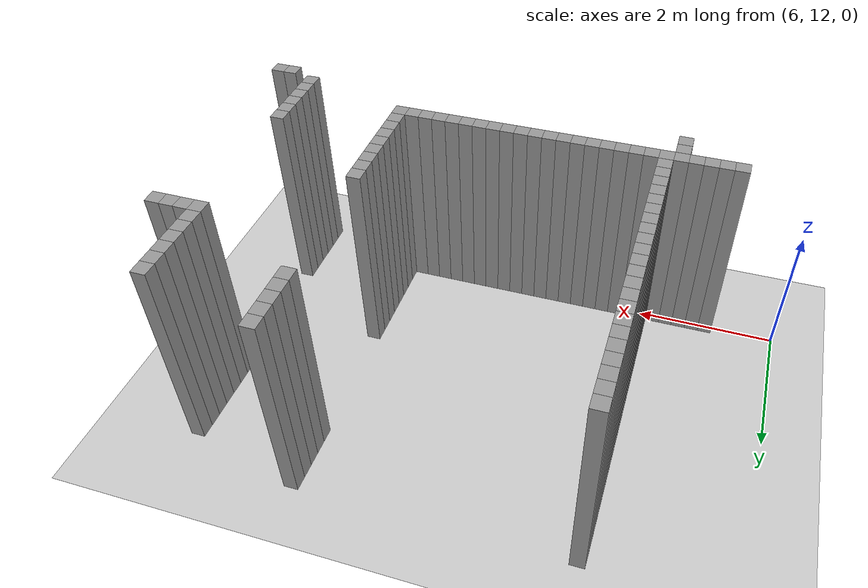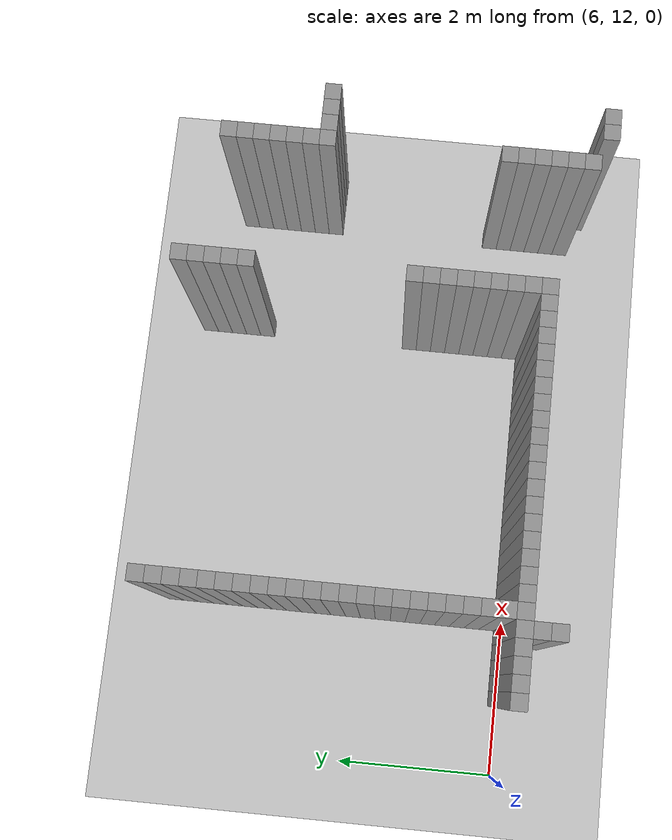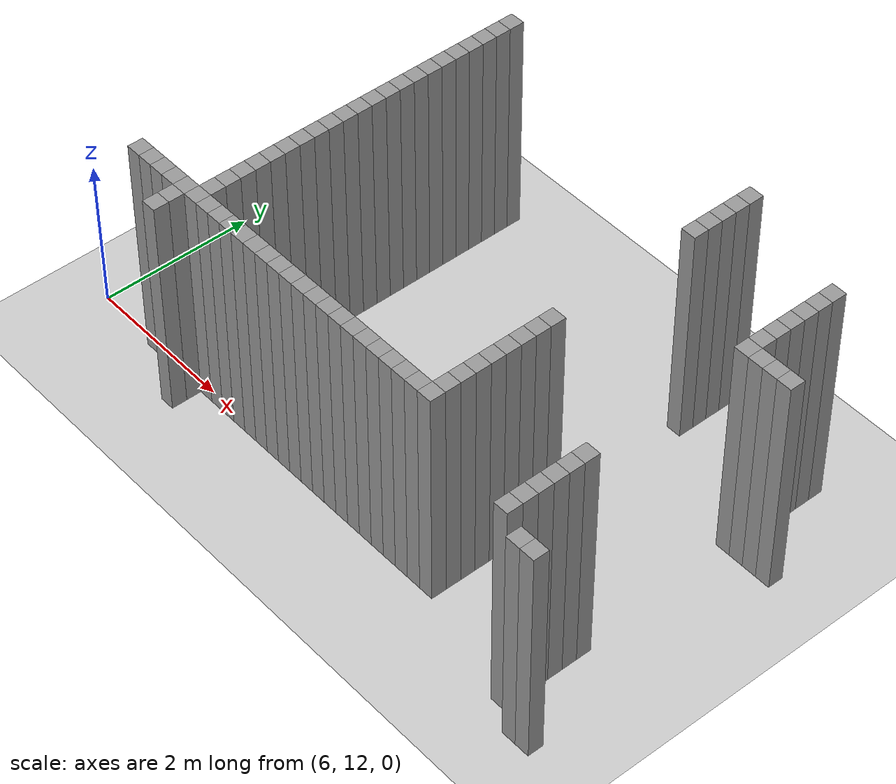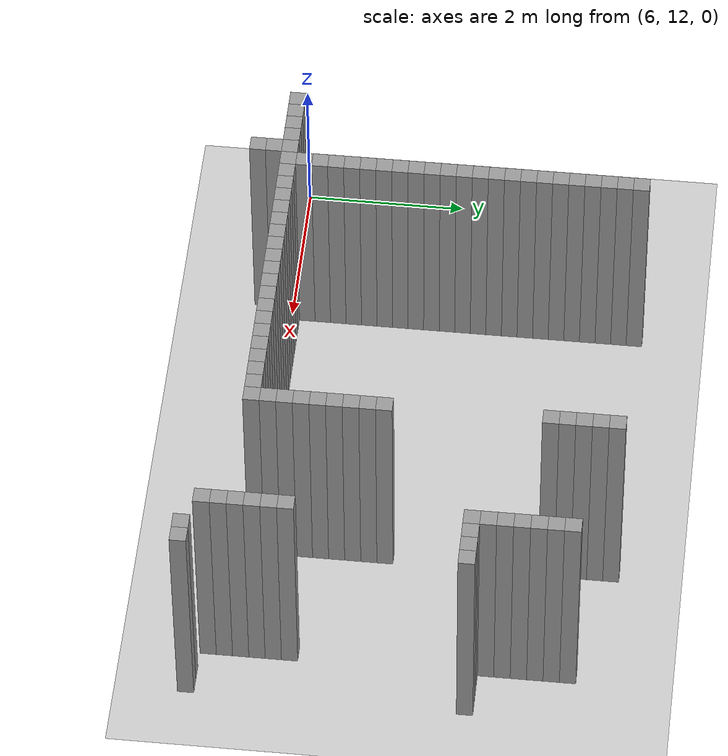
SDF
<sdf version="1.7">
 <world name="default">
  <model name="ground_plane">
   <static>1</static>
   <link name="link">
    <collision name="collision">
     <geometry><plane><normal>0 0 1</normal><size>100 100</size></plane></geometry>
     <surface>
      <contact><collide_bitmask>65535</collide_bitmask></contact>
      <friction><ode><mu>100</mu><mu2>50</mu2></ode></friction>
     </surface>
    </collision>
    <visual name="visual">
     <cast_shadows>0</cast_shadows>
     <geometry><plane><normal>0 0 1</normal><size>100 100</size></plane></geometry>
     <material>
      <script><uri>file://media/materials/scripts/gazebo.material</uri><name>Gazebo/Grey</name></script>
     </material>
    </visual>
   </link>
  </model>
  <model name="05222">
   <pose>-1 -1 0 0 -0 0</pose>
   <link name="Wall_562">
    <collision name="Wall_562_Collision">
     <geometry><box><size>0.2 0.2 3</size></box></geometry>
     <pose>0 0 1.5 0 -0 0</pose>
    </collision>
    <visual name="Wall_562_Visual">
     <pose>0 0 1.5 0 -0 0</pose>
     <geometry><box><size>0.2 0.2 3</size></box></geometry>
     <material>
      <script><uri>file://media/materials/scripts/gazebo.material</uri><name>Gazebo/Grey</name></script>
      <ambient>1 1 1 1</ambient>
     </material>
     <meta><layer>0</layer></meta>
    </visual>
    <pose>14.8 12.4 0 0 -0 0</pose>
   </link>
   <link name="Wall_563">
    <collision name="Wall_563_Collision">
     <geometry><box><size>0.2 0.2 3</size></box></geometry>
     <pose>0 0 1.5 0 -0 0</pose>
    </collision>
    <visual name="Wall_563_Visual">
     <pose>0 0 1.5 0 -0 0</pose>
     <geometry><box><size>0.2 0.2 3</size></box></geometry>
     <material>
      <script><uri>file://media/materials/scripts/gazebo.material</uri><name>Gazebo/Grey</name></script>
      <ambient>1 1 1 1</ambient>
     </material>
     <meta><layer>0</layer></meta>
    </visual>
    <pose>15.0 12.4 0 0 -0 0</pose>
   </link>
   <link name="Wall_582">
    <collision name="Wall_582_Collision">
     <geometry><box><size>0.2 0.2 3</size></box></geometry>
     <pose>0 0 1.5 0 -0 0</pose>
    </collision>
    <visual name="Wall_582_Visual">
     <pose>0 0 1.5 0 -0 0</pose>
     <geometry><box><size>0.2 0.2 3</size></box></geometry>
     <material>
      <script><uri>file://media/materials/scripts/gazebo.material</uri><name>Gazebo/Grey</name></script>
      <ambient>1 1 1 1</ambient>
     </material>
     <meta><layer>0</layer></meta>
    </visual>
    <pose>8.8 12.600000000000001 0 0 -0 0</pose>
   </link>
   <link name="Wall_583">
    <collision name="Wall_583_Collision">
     <geometry><box><size>0.2 0.2 3</size></box></geometry>
     <pose>0 0 1.5 0 -0 0</pose>
    </collision>
    <visual name="Wall_583_Visual">
     <pose>0 0 1.5 0 -0 0</pose>
     <geometry><box><size>0.2 0.2 3</size></box></geometry>
     <material>
      <script><uri>file://media/materials/scripts/gazebo.material</uri><name>Gazebo/Grey</name></script>
      <ambient>1 1 1 1</ambient>
     </material>
     <meta><layer>0</layer></meta>
    </visual>
    <pose>14.4 12.600000000000001 0 0 -0 0</pose>
   </link>
   <link name="Wall_588">
    <collision name="Wall_588_Collision">
     <geometry><box><size>0.2 0.2 3</size></box></geometry>
     <pose>0 0 1.5 0 -0 0</pose>
    </collision>
    <visual name="Wall_588_Visual">
     <pose>0 0 1.5 0 -0 0</pose>
     <geometry><box><size>0.2 0.2 3</size></box></geometry>
     <material>
      <script><uri>file://media/materials/scripts/gazebo.material</uri><name>Gazebo/Grey</name></script>
      <ambient>1 1 1 1</ambient>
     </material>
     <meta><layer>0</layer></meta>
    </visual>
    <pose>8.8 12.8 0 0 -0 0</pose>
   </link>
   <link name="Wall_589">
    <collision name="Wall_589_Collision">
     <geometry><box><size>0.2 0.2 3</size></box></geometry>
     <pose>0 0 1.5 0 -0 0</pose>
    </collision>
    <visual name="Wall_589_Visual">
     <pose>0 0 1.5 0 -0 0</pose>
     <geometry><box><size>0.2 0.2 3</size></box></geometry>
     <material>
      <script><uri>file://media/materials/scripts/gazebo.material</uri><name>Gazebo/Grey</name></script>
      <ambient>1 1 1 1</ambient>
     </material>
     <meta><layer>0</layer></meta>
    </visual>
    <pose>14.4 12.8 0 0 -0 0</pose>
   </link>
   <link name="Wall_607">
    <collision name="Wall_607_Collision">
     <geometry><box><size>0.2 0.2 3</size></box></geometry>
     <pose>0 0 1.5 0 -0 0</pose>
    </collision>
    <visual name="Wall_607_Visual">
     <pose>0 0 1.5 0 -0 0</pose>
     <geometry><box><size>0.2 0.2 3</size></box></geometry>
     <material>
      <script><uri>file://media/materials/scripts/gazebo.material</uri><name>Gazebo/Grey</name></script>
      <ambient>1 1 1 1</ambient>
     </material>
     <meta><layer>0</layer></meta>
    </visual>
    <pose>8.0 13.0 0 0 -0 0</pose>
   </link>
   <link name="Wall_608">
    <collision name="Wall_608_Collision">
     <geometry><box><size>0.2 0.2 3</size></box></geometry>
     <pose>0 0 1.5 0 -0 0</pose>
    </collision>
    <visual name="Wall_608_Visual">
     <pose>0 0 1.5 0 -0 0</pose>
     <geometry><box><size>0.2 0.2 3</size></box></geometry>
     <material>
      <script><uri>file://media/materials/scripts/gazebo.material</uri><name>Gazebo/Grey</name></script>
      <ambient>1 1 1 1</ambient>
     </material>
     <meta><layer>0</layer></meta>
    </visual>
    <pose>8.200000000000001 13.0 0 0 -0 0</pose>
   </link>
   <link name="Wall_609">
    <collision name="Wall_609_Collision">
     <geometry><box><size>0.2 0.2 3</size></box></geometry>
     <pose>0 0 1.5 0 -0 0</pose>
    </collision>
    <visual name="Wall_609_Visual">
     <pose>0 0 1.5 0 -0 0</pose>
     <geometry><box><size>0.2 0.2 3</size></box></geometry>
     <material>
      <script><uri>file://media/materials/scripts/gazebo.material</uri><name>Gazebo/Grey</name></script>
      <ambient>1 1 1 1</ambient>
     </material>
     <meta><layer>0</layer></meta>
    </visual>
    <pose>8.4 13.0 0 0 -0 0</pose>
   </link>
   <link name="Wall_610">
    <collision name="Wall_610_Collision">
     <geometry><box><size>0.2 0.2 3</size></box></geometry>
     <pose>0 0 1.5 0 -0 0</pose>
    </collision>
    <visual name="Wall_610_Visual">
     <pose>0 0 1.5 0 -0 0</pose>
     <geometry><box><size>0.2 0.2 3</size></box></geometry>
     <material>
      <script><uri>file://media/materials/scripts/gazebo.material</uri><name>Gazebo/Grey</name></script>
      <ambient>1 1 1 1</ambient>
     </material>
     <meta><layer>0</layer></meta>
    </visual>
    <pose>8.6 13.0 0 0 -0 0</pose>
   </link>
   <link name="Wall_611">
    <collision name="Wall_611_Collision">
     <geometry><box><size>0.2 0.2 3</size></box></geometry>
     <pose>0 0 1.5 0 -0 0</pose>
    </collision>
    <visual name="Wall_611_Visual">
     <pose>0 0 1.5 0 -0 0</pose>
     <geometry><box><size>0.2 0.2 3</size></box></geometry>
     <material>
      <script><uri>file://media/materials/scripts/gazebo.material</uri><name>Gazebo/Grey</name></script>
      <ambient>1 1 1 1</ambient>
     </material>
     <meta><layer>0</layer></meta>
    </visual>
    <pose>8.8 13.0 0 0 -0 0</pose>
   </link>
   <link name="Wall_612">
    <collision name="Wall_612_Collision">
     <geometry><box><size>0.2 0.2 3</size></box></geometry>
     <pose>0 0 1.5 0 -0 0</pose>
    </collision>
    <visual name="Wall_612_Visual">
     <pose>0 0 1.5 0 -0 0</pose>
     <geometry><box><size>0.2 0.2 3</size></box></geometry>
     <material>
      <script><uri>file://media/materials/scripts/gazebo.material</uri><name>Gazebo/Grey</name></script>
      <ambient>1 1 1 1</ambient>
     </material>
     <meta><layer>0</layer></meta>
    </visual>
    <pose>9.0 13.0 0 0 -0 0</pose>
   </link>
   <link name="Wall_613">
    <collision name="Wall_613_Collision">
     <geometry><box><size>0.2 0.2 3</size></box></geometry>
     <pose>0 0 1.5 0 -0 0</pose>
    </collision>
    <visual name="Wall_613_Visual">
     <pose>0 0 1.5 0 -0 0</pose>
     <geometry><box><size>0.2 0.2 3</size></box></geometry>
     <material>
      <script><uri>file://media/materials/scripts/gazebo.material</uri><name>Gazebo/Grey</name></script>
      <ambient>1 1 1 1</ambient>
     </material>
     <meta><layer>0</layer></meta>
    </visual>
    <pose>9.200000000000001 13.0 0 0 -0 0</pose>
   </link>
   <link name="Wall_614">
    <collision name="Wall_614_Collision">
     <geometry><box><size>0.2 0.2 3</size></box></geometry>
     <pose>0 0 1.5 0 -0 0</pose>
    </collision>
    <visual name="Wall_614_Visual">
     <pose>0 0 1.5 0 -0 0</pose>
     <geometry><box><size>0.2 0.2 3</size></box></geometry>
     <material>
      <script><uri>file://media/materials/scripts/gazebo.material</uri><name>Gazebo/Grey</name></script>
      <ambient>1 1 1 1</ambient>
     </material>
     <meta><layer>0</layer></meta>
    </visual>
    <pose>9.4 13.0 0 0 -0 0</pose>
   </link>
   <link name="Wall_615">
    <collision name="Wall_615_Collision">
     <geometry><box><size>0.2 0.2 3</size></box></geometry>
     <pose>0 0 1.5 0 -0 0</pose>
    </collision>
    <visual name="Wall_615_Visual">
     <pose>0 0 1.5 0 -0 0</pose>
     <geometry><box><size>0.2 0.2 3</size></box></geometry>
     <material>
      <script><uri>file://media/materials/scripts/gazebo.material</uri><name>Gazebo/Grey</name></script>
      <ambient>1 1 1 1</ambient>
     </material>
     <meta><layer>0</layer></meta>
    </visual>
    <pose>9.600000000000001 13.0 0 0 -0 0</pose>
   </link>
   <link name="Wall_616">
    <collision name="Wall_616_Collision">
     <geometry><box><size>0.2 0.2 3</size></box></geometry>
     <pose>0 0 1.5 0 -0 0</pose>
    </collision>
    <visual name="Wall_616_Visual">
     <pose>0 0 1.5 0 -0 0</pose>
     <geometry><box><size>0.2 0.2 3</size></box></geometry>
     <material>
      <script><uri>file://media/materials/scripts/gazebo.material</uri><name>Gazebo/Grey</name></script>
      <ambient>1 1 1 1</ambient>
     </material>
     <meta><layer>0</layer></meta>
    </visual>
    <pose>9.8 13.0 0 0 -0 0</pose>
   </link>
   <link name="Wall_617">
    <collision name="Wall_617_Collision">
     <geometry><box><size>0.2 0.2 3</size></box></geometry>
     <pose>0 0 1.5 0 -0 0</pose>
    </collision>
    <visual name="Wall_617_Visual">
     <pose>0 0 1.5 0 -0 0</pose>
     <geometry><box><size>0.2 0.2 3</size></box></geometry>
     <material>
      <script><uri>file://media/materials/scripts/gazebo.material</uri><name>Gazebo/Grey</name></script>
      <ambient>1 1 1 1</ambient>
     </material>
     <meta><layer>0</layer></meta>
    </visual>
    <pose>10.0 13.0 0 0 -0 0</pose>
   </link>
   <link name="Wall_618">
    <collision name="Wall_618_Collision">
     <geometry><box><size>0.2 0.2 3</size></box></geometry>
     <pose>0 0 1.5 0 -0 0</pose>
    </collision>
    <visual name="Wall_618_Visual">
     <pose>0 0 1.5 0 -0 0</pose>
     <geometry><box><size>0.2 0.2 3</size></box></geometry>
     <material>
      <script><uri>file://media/materials/scripts/gazebo.material</uri><name>Gazebo/Grey</name></script>
      <ambient>1 1 1 1</ambient>
     </material>
     <meta><layer>0</layer></meta>
    </visual>
    <pose>10.200000000000001 13.0 0 0 -0 0</pose>
   </link>
   <link name="Wall_619">
    <collision name="Wall_619_Collision">
     <geometry><box><size>0.2 0.2 3</size></box></geometry>
     <pose>0 0 1.5 0 -0 0</pose>
    </collision>
    <visual name="Wall_619_Visual">
     <pose>0 0 1.5 0 -0 0</pose>
     <geometry><box><size>0.2 0.2 3</size></box></geometry>
     <material>
      <script><uri>file://media/materials/scripts/gazebo.material</uri><name>Gazebo/Grey</name></script>
      <ambient>1 1 1 1</ambient>
     </material>
     <meta><layer>0</layer></meta>
    </visual>
    <pose>10.4 13.0 0 0 -0 0</pose>
   </link>
   <link name="Wall_620">
    <collision name="Wall_620_Collision">
     <geometry><box><size>0.2 0.2 3</size></box></geometry>
     <pose>0 0 1.5 0 -0 0</pose>
    </collision>
    <visual name="Wall_620_Visual">
     <pose>0 0 1.5 0 -0 0</pose>
     <geometry><box><size>0.2 0.2 3</size></box></geometry>
     <material>
      <script><uri>file://media/materials/scripts/gazebo.material</uri><name>Gazebo/Grey</name></script>
      <ambient>1 1 1 1</ambient>
     </material>
     <meta><layer>0</layer></meta>
    </visual>
    <pose>10.600000000000001 13.0 0 0 -0 0</pose>
   </link>
   <link name="Wall_621">
    <collision name="Wall_621_Collision">
     <geometry><box><size>0.2 0.2 3</size></box></geometry>
     <pose>0 0 1.5 0 -0 0</pose>
    </collision>
    <visual name="Wall_621_Visual">
     <pose>0 0 1.5 0 -0 0</pose>
     <geometry><box><size>0.2 0.2 3</size></box></geometry>
     <material>
      <script><uri>file://media/materials/scripts/gazebo.material</uri><name>Gazebo/Grey</name></script>
      <ambient>1 1 1 1</ambient>
     </material>
     <meta><layer>0</layer></meta>
    </visual>
    <pose>10.8 13.0 0 0 -0 0</pose>
   </link>
   <link name="Wall_622">
    <collision name="Wall_622_Collision">
     <geometry><box><size>0.2 0.2 3</size></box></geometry>
     <pose>0 0 1.5 0 -0 0</pose>
    </collision>
    <visual name="Wall_622_Visual">
     <pose>0 0 1.5 0 -0 0</pose>
     <geometry><box><size>0.2 0.2 3</size></box></geometry>
     <material>
      <script><uri>file://media/materials/scripts/gazebo.material</uri><name>Gazebo/Grey</name></script>
      <ambient>1 1 1 1</ambient>
     </material>
     <meta><layer>0</layer></meta>
    </visual>
    <pose>11.0 13.0 0 0 -0 0</pose>
   </link>
   <link name="Wall_623">
    <collision name="Wall_623_Collision">
     <geometry><box><size>0.2 0.2 3</size></box></geometry>
     <pose>0 0 1.5 0 -0 0</pose>
    </collision>
    <visual name="Wall_623_Visual">
     <pose>0 0 1.5 0 -0 0</pose>
     <geometry><box><size>0.2 0.2 3</size></box></geometry>
     <material>
      <script><uri>file://media/materials/scripts/gazebo.material</uri><name>Gazebo/Grey</name></script>
      <ambient>1 1 1 1</ambient>
     </material>
     <meta><layer>0</layer></meta>
    </visual>
    <pose>11.200000000000001 13.0 0 0 -0 0</pose>
   </link>
   <link name="Wall_624">
    <collision name="Wall_624_Collision">
     <geometry><box><size>0.2 0.2 3</size></box></geometry>
     <pose>0 0 1.5 0 -0 0</pose>
    </collision>
    <visual name="Wall_624_Visual">
     <pose>0 0 1.5 0 -0 0</pose>
     <geometry><box><size>0.2 0.2 3</size></box></geometry>
     <material>
      <script><uri>file://media/materials/scripts/gazebo.material</uri><name>Gazebo/Grey</name></script>
      <ambient>1 1 1 1</ambient>
     </material>
     <meta><layer>0</layer></meta>
    </visual>
    <pose>11.4 13.0 0 0 -0 0</pose>
   </link>
   <link name="Wall_625">
    <collision name="Wall_625_Collision">
     <geometry><box><size>0.2 0.2 3</size></box></geometry>
     <pose>0 0 1.5 0 -0 0</pose>
    </collision>
    <visual name="Wall_625_Visual">
     <pose>0 0 1.5 0 -0 0</pose>
     <geometry><box><size>0.2 0.2 3</size></box></geometry>
     <material>
      <script><uri>file://media/materials/scripts/gazebo.material</uri><name>Gazebo/Grey</name></script>
      <ambient>1 1 1 1</ambient>
     </material>
     <meta><layer>0</layer></meta>
    </visual>
    <pose>11.600000000000001 13.0 0 0 -0 0</pose>
   </link>
   <link name="Wall_626">
    <collision name="Wall_626_Collision">
     <geometry><box><size>0.2 0.2 3</size></box></geometry>
     <pose>0 0 1.5 0 -0 0</pose>
    </collision>
    <visual name="Wall_626_Visual">
     <pose>0 0 1.5 0 -0 0</pose>
     <geometry><box><size>0.2 0.2 3</size></box></geometry>
     <material>
      <script><uri>file://media/materials/scripts/gazebo.material</uri><name>Gazebo/Grey</name></script>
      <ambient>1 1 1 1</ambient>
     </material>
     <meta><layer>0</layer></meta>
    </visual>
    <pose>11.8 13.0 0 0 -0 0</pose>
   </link>
   <link name="Wall_627">
    <collision name="Wall_627_Collision">
     <geometry><box><size>0.2 0.2 3</size></box></geometry>
     <pose>0 0 1.5 0 -0 0</pose>
    </collision>
    <visual name="Wall_627_Visual">
     <pose>0 0 1.5 0 -0 0</pose>
     <geometry><box><size>0.2 0.2 3</size></box></geometry>
     <material>
      <script><uri>file://media/materials/scripts/gazebo.material</uri><name>Gazebo/Grey</name></script>
      <ambient>1 1 1 1</ambient>
     </material>
     <meta><layer>0</layer></meta>
    </visual>
    <pose>12.0 13.0 0 0 -0 0</pose>
   </link>
   <link name="Wall_628">
    <collision name="Wall_628_Collision">
     <geometry><box><size>0.2 0.2 3</size></box></geometry>
     <pose>0 0 1.5 0 -0 0</pose>
    </collision>
    <visual name="Wall_628_Visual">
     <pose>0 0 1.5 0 -0 0</pose>
     <geometry><box><size>0.2 0.2 3</size></box></geometry>
     <material>
      <script><uri>file://media/materials/scripts/gazebo.material</uri><name>Gazebo/Grey</name></script>
      <ambient>1 1 1 1</ambient>
     </material>
     <meta><layer>0</layer></meta>
    </visual>
    <pose>12.200000000000001 13.0 0 0 -0 0</pose>
   </link>
   <link name="Wall_629">
    <collision name="Wall_629_Collision">
     <geometry><box><size>0.2 0.2 3</size></box></geometry>
     <pose>0 0 1.5 0 -0 0</pose>
    </collision>
    <visual name="Wall_629_Visual">
     <pose>0 0 1.5 0 -0 0</pose>
     <geometry><box><size>0.2 0.2 3</size></box></geometry>
     <material>
      <script><uri>file://media/materials/scripts/gazebo.material</uri><name>Gazebo/Grey</name></script>
      <ambient>1 1 1 1</ambient>
     </material>
     <meta><layer>0</layer></meta>
    </visual>
    <pose>12.4 13.0 0 0 -0 0</pose>
   </link>
   <link name="Wall_630">
    <collision name="Wall_630_Collision">
     <geometry><box><size>0.2 0.2 3</size></box></geometry>
     <pose>0 0 1.5 0 -0 0</pose>
    </collision>
    <visual name="Wall_630_Visual">
     <pose>0 0 1.5 0 -0 0</pose>
     <geometry><box><size>0.2 0.2 3</size></box></geometry>
     <material>
      <script><uri>file://media/materials/scripts/gazebo.material</uri><name>Gazebo/Grey</name></script>
      <ambient>1 1 1 1</ambient>
     </material>
     <meta><layer>0</layer></meta>
    </visual>
    <pose>12.600000000000001 13.0 0 0 -0 0</pose>
   </link>
   <link name="Wall_631">
    <collision name="Wall_631_Collision">
     <geometry><box><size>0.2 0.2 3</size></box></geometry>
     <pose>0 0 1.5 0 -0 0</pose>
    </collision>
    <visual name="Wall_631_Visual">
     <pose>0 0 1.5 0 -0 0</pose>
     <geometry><box><size>0.2 0.2 3</size></box></geometry>
     <material>
      <script><uri>file://media/materials/scripts/gazebo.material</uri><name>Gazebo/Grey</name></script>
      <ambient>1 1 1 1</ambient>
     </material>
     <meta><layer>0</layer></meta>
    </visual>
    <pose>12.8 13.0 0 0 -0 0</pose>
   </link>
   <link name="Wall_632">
    <collision name="Wall_632_Collision">
     <geometry><box><size>0.2 0.2 3</size></box></geometry>
     <pose>0 0 1.5 0 -0 0</pose>
    </collision>
    <visual name="Wall_632_Visual">
     <pose>0 0 1.5 0 -0 0</pose>
     <geometry><box><size>0.2 0.2 3</size></box></geometry>
     <material>
      <script><uri>file://media/materials/scripts/gazebo.material</uri><name>Gazebo/Grey</name></script>
      <ambient>1 1 1 1</ambient>
     </material>
     <meta><layer>0</layer></meta>
    </visual>
    <pose>14.4 13.0 0 0 -0 0</pose>
   </link>
   <link name="Wall_654">
    <collision name="Wall_654_Collision">
     <geometry><box><size>0.2 0.2 3</size></box></geometry>
     <pose>0 0 1.5 0 -0 0</pose>
    </collision>
    <visual name="Wall_654_Visual">
     <pose>0 0 1.5 0 -0 0</pose>
     <geometry><box><size>0.2 0.2 3</size></box></geometry>
     <material>
      <script><uri>file://media/materials/scripts/gazebo.material</uri><name>Gazebo/Grey</name></script>
      <ambient>1 1 1 1</ambient>
     </material>
     <meta><layer>0</layer></meta>
    </visual>
    <pose>9.0 13.200000000000001 0 0 -0 0</pose>
   </link>
   <link name="Wall_655">
    <collision name="Wall_655_Collision">
     <geometry><box><size>0.2 0.2 3</size></box></geometry>
     <pose>0 0 1.5 0 -0 0</pose>
    </collision>
    <visual name="Wall_655_Visual">
     <pose>0 0 1.5 0 -0 0</pose>
     <geometry><box><size>0.2 0.2 3</size></box></geometry>
     <material>
      <script><uri>file://media/materials/scripts/gazebo.material</uri><name>Gazebo/Grey</name></script>
      <ambient>1 1 1 1</ambient>
     </material>
     <meta><layer>0</layer></meta>
    </visual>
    <pose>12.8 13.200000000000001 0 0 -0 0</pose>
   </link>
   <link name="Wall_656">
    <collision name="Wall_656_Collision">
     <geometry><box><size>0.2 0.2 3</size></box></geometry>
     <pose>0 0 1.5 0 -0 0</pose>
    </collision>
    <visual name="Wall_656_Visual">
     <pose>0 0 1.5 0 -0 0</pose>
     <geometry><box><size>0.2 0.2 3</size></box></geometry>
     <material>
      <script><uri>file://media/materials/scripts/gazebo.material</uri><name>Gazebo/Grey</name></script>
      <ambient>1 1 1 1</ambient>
     </material>
     <meta><layer>0</layer></meta>
    </visual>
    <pose>14.4 13.200000000000001 0 0 -0 0</pose>
   </link>
   <link name="Wall_662">
    <collision name="Wall_662_Collision">
     <geometry><box><size>0.2 0.2 3</size></box></geometry>
     <pose>0 0 1.5 0 -0 0</pose>
    </collision>
    <visual name="Wall_662_Visual">
     <pose>0 0 1.5 0 -0 0</pose>
     <geometry><box><size>0.2 0.2 3</size></box></geometry>
     <material>
      <script><uri>file://media/materials/scripts/gazebo.material</uri><name>Gazebo/Grey</name></script>
      <ambient>1 1 1 1</ambient>
     </material>
     <meta><layer>0</layer></meta>
    </visual>
    <pose>9.0 13.4 0 0 -0 0</pose>
   </link>
   <link name="Wall_663">
    <collision name="Wall_663_Collision">
     <geometry><box><size>0.2 0.2 3</size></box></geometry>
     <pose>0 0 1.5 0 -0 0</pose>
    </collision>
    <visual name="Wall_663_Visual">
     <pose>0 0 1.5 0 -0 0</pose>
     <geometry><box><size>0.2 0.2 3</size></box></geometry>
     <material>
      <script><uri>file://media/materials/scripts/gazebo.material</uri><name>Gazebo/Grey</name></script>
      <ambient>1 1 1 1</ambient>
     </material>
     <meta><layer>0</layer></meta>
    </visual>
    <pose>12.8 13.4 0 0 -0 0</pose>
   </link>
   <link name="Wall_664">
    <collision name="Wall_664_Collision">
     <geometry><box><size>0.2 0.2 3</size></box></geometry>
     <pose>0 0 1.5 0 -0 0</pose>
    </collision>
    <visual name="Wall_664_Visual">
     <pose>0 0 1.5 0 -0 0</pose>
     <geometry><box><size>0.2 0.2 3</size></box></geometry>
     <material>
      <script><uri>file://media/materials/scripts/gazebo.material</uri><name>Gazebo/Grey</name></script>
      <ambient>1 1 1 1</ambient>
     </material>
     <meta><layer>0</layer></meta>
    </visual>
    <pose>14.4 13.4 0 0 -0 0</pose>
   </link>
   <link name="Wall_670">
    <collision name="Wall_670_Collision">
     <geometry><box><size>0.2 0.2 3</size></box></geometry>
     <pose>0 0 1.5 0 -0 0</pose>
    </collision>
    <visual name="Wall_670_Visual">
     <pose>0 0 1.5 0 -0 0</pose>
     <geometry><box><size>0.2 0.2 3</size></box></geometry>
     <material>
      <script><uri>file://media/materials/scripts/gazebo.material</uri><name>Gazebo/Grey</name></script>
      <ambient>1 1 1 1</ambient>
     </material>
     <meta><layer>0</layer></meta>
    </visual>
    <pose>9.0 13.600000000000001 0 0 -0 0</pose>
   </link>
   <link name="Wall_671">
    <collision name="Wall_671_Collision">
     <geometry><box><size>0.2 0.2 3</size></box></geometry>
     <pose>0 0 1.5 0 -0 0</pose>
    </collision>
    <visual name="Wall_671_Visual">
     <pose>0 0 1.5 0 -0 0</pose>
     <geometry><box><size>0.2 0.2 3</size></box></geometry>
     <material>
      <script><uri>file://media/materials/scripts/gazebo.material</uri><name>Gazebo/Grey</name></script>
      <ambient>1 1 1 1</ambient>
     </material>
     <meta><layer>0</layer></meta>
    </visual>
    <pose>12.8 13.600000000000001 0 0 -0 0</pose>
   </link>
   <link name="Wall_672">
    <collision name="Wall_672_Collision">
     <geometry><box><size>0.2 0.2 3</size></box></geometry>
     <pose>0 0 1.5 0 -0 0</pose>
    </collision>
    <visual name="Wall_672_Visual">
     <pose>0 0 1.5 0 -0 0</pose>
     <geometry><box><size>0.2 0.2 3</size></box></geometry>
     <material>
      <script><uri>file://media/materials/scripts/gazebo.material</uri><name>Gazebo/Grey</name></script>
      <ambient>1 1 1 1</ambient>
     </material>
     <meta><layer>0</layer></meta>
    </visual>
    <pose>14.4 13.600000000000001 0 0 -0 0</pose>
   </link>
   <link name="Wall_678">
    <collision name="Wall_678_Collision">
     <geometry><box><size>0.2 0.2 3</size></box></geometry>
     <pose>0 0 1.5 0 -0 0</pose>
    </collision>
    <visual name="Wall_678_Visual">
     <pose>0 0 1.5 0 -0 0</pose>
     <geometry><box><size>0.2 0.2 3</size></box></geometry>
     <material>
      <script><uri>file://media/materials/scripts/gazebo.material</uri><name>Gazebo/Grey</name></script>
      <ambient>1 1 1 1</ambient>
     </material>
     <meta><layer>0</layer></meta>
    </visual>
    <pose>9.0 13.8 0 0 -0 0</pose>
   </link>
   <link name="Wall_679">
    <collision name="Wall_679_Collision">
     <geometry><box><size>0.2 0.2 3</size></box></geometry>
     <pose>0 0 1.5 0 -0 0</pose>
    </collision>
    <visual name="Wall_679_Visual">
     <pose>0 0 1.5 0 -0 0</pose>
     <geometry><box><size>0.2 0.2 3</size></box></geometry>
     <material>
      <script><uri>file://media/materials/scripts/gazebo.material</uri><name>Gazebo/Grey</name></script>
      <ambient>1 1 1 1</ambient>
     </material>
     <meta><layer>0</layer></meta>
    </visual>
    <pose>12.8 13.8 0 0 -0 0</pose>
   </link>
   <link name="Wall_685">
    <collision name="Wall_685_Collision">
     <geometry><box><size>0.2 0.2 3</size></box></geometry>
     <pose>0 0 1.5 0 -0 0</pose>
    </collision>
    <visual name="Wall_685_Visual">
     <pose>0 0 1.5 0 -0 0</pose>
     <geometry><box><size>0.2 0.2 3</size></box></geometry>
     <material>
      <script><uri>file://media/materials/scripts/gazebo.material</uri><name>Gazebo/Grey</name></script>
      <ambient>1 1 1 1</ambient>
     </material>
     <meta><layer>0</layer></meta>
    </visual>
    <pose>9.0 14.0 0 0 -0 0</pose>
   </link>
   <link name="Wall_686">
    <collision name="Wall_686_Collision">
     <geometry><box><size>0.2 0.2 3</size></box></geometry>
     <pose>0 0 1.5 0 -0 0</pose>
    </collision>
    <visual name="Wall_686_Visual">
     <pose>0 0 1.5 0 -0 0</pose>
     <geometry><box><size>0.2 0.2 3</size></box></geometry>
     <material>
      <script><uri>file://media/materials/scripts/gazebo.material</uri><name>Gazebo/Grey</name></script>
      <ambient>1 1 1 1</ambient>
     </material>
     <meta><layer>0</layer></meta>
    </visual>
    <pose>12.8 14.0 0 0 -0 0</pose>
   </link>
   <link name="Wall_691">
    <collision name="Wall_691_Collision">
     <geometry><box><size>0.2 0.2 3</size></box></geometry>
     <pose>0 0 1.5 0 -0 0</pose>
    </collision>
    <visual name="Wall_691_Visual">
     <pose>0 0 1.5 0 -0 0</pose>
     <geometry><box><size>0.2 0.2 3</size></box></geometry>
     <material>
      <script><uri>file://media/materials/scripts/gazebo.material</uri><name>Gazebo/Grey</name></script>
      <ambient>1 1 1 1</ambient>
     </material>
     <meta><layer>0</layer></meta>
    </visual>
    <pose>9.0 14.200000000000001 0 0 -0 0</pose>
   </link>
   <link name="Wall_692">
    <collision name="Wall_692_Collision">
     <geometry><box><size>0.2 0.2 3</size></box></geometry>
     <pose>0 0 1.5 0 -0 0</pose>
    </collision>
    <visual name="Wall_692_Visual">
     <pose>0 0 1.5 0 -0 0</pose>
     <geometry><box><size>0.2 0.2 3</size></box></geometry>
     <material>
      <script><uri>file://media/materials/scripts/gazebo.material</uri><name>Gazebo/Grey</name></script>
      <ambient>1 1 1 1</ambient>
     </material>
     <meta><layer>0</layer></meta>
    </visual>
    <pose>12.8 14.200000000000001 0 0 -0 0</pose>
   </link>
   <link name="Wall_697">
    <collision name="Wall_697_Collision">
     <geometry><box><size>0.2 0.2 3</size></box></geometry>
     <pose>0 0 1.5 0 -0 0</pose>
    </collision>
    <visual name="Wall_697_Visual">
     <pose>0 0 1.5 0 -0 0</pose>
     <geometry><box><size>0.2 0.2 3</size></box></geometry>
     <material>
      <script><uri>file://media/materials/scripts/gazebo.material</uri><name>Gazebo/Grey</name></script>
      <ambient>1 1 1 1</ambient>
     </material>
     <meta><layer>0</layer></meta>
    </visual>
    <pose>9.0 14.4 0 0 -0 0</pose>
   </link>
   <link name="Wall_698">
    <collision name="Wall_698_Collision">
     <geometry><box><size>0.2 0.2 3</size></box></geometry>
     <pose>0 0 1.5 0 -0 0</pose>
    </collision>
    <visual name="Wall_698_Visual">
     <pose>0 0 1.5 0 -0 0</pose>
     <geometry><box><size>0.2 0.2 3</size></box></geometry>
     <material>
      <script><uri>file://media/materials/scripts/gazebo.material</uri><name>Gazebo/Grey</name></script>
      <ambient>1 1 1 1</ambient>
     </material>
     <meta><layer>0</layer></meta>
    </visual>
    <pose>12.8 14.4 0 0 -0 0</pose>
   </link>
   <link name="Wall_703">
    <collision name="Wall_703_Collision">
     <geometry><box><size>0.2 0.2 3</size></box></geometry>
     <pose>0 0 1.5 0 -0 0</pose>
    </collision>
    <visual name="Wall_703_Visual">
     <pose>0 0 1.5 0 -0 0</pose>
     <geometry><box><size>0.2 0.2 3</size></box></geometry>
     <material>
      <script><uri>file://media/materials/scripts/gazebo.material</uri><name>Gazebo/Grey</name></script>
      <ambient>1 1 1 1</ambient>
     </material>
     <meta><layer>0</layer></meta>
    </visual>
    <pose>9.0 14.600000000000001 0 0 -0 0</pose>
   </link>
   <link name="Wall_704">
    <collision name="Wall_704_Collision">
     <geometry><box><size>0.2 0.2 3</size></box></geometry>
     <pose>0 0 1.5 0 -0 0</pose>
    </collision>
    <visual name="Wall_704_Visual">
     <pose>0 0 1.5 0 -0 0</pose>
     <geometry><box><size>0.2 0.2 3</size></box></geometry>
     <material>
      <script><uri>file://media/materials/scripts/gazebo.material</uri><name>Gazebo/Grey</name></script>
      <ambient>1 1 1 1</ambient>
     </material>
     <meta><layer>0</layer></meta>
    </visual>
    <pose>12.8 14.600000000000001 0 0 -0 0</pose>
   </link>
   <link name="Wall_710">
    <collision name="Wall_710_Collision">
     <geometry><box><size>0.2 0.2 3</size></box></geometry>
     <pose>0 0 1.5 0 -0 0</pose>
    </collision>
    <visual name="Wall_710_Visual">
     <pose>0 0 1.5 0 -0 0</pose>
     <geometry><box><size>0.2 0.2 3</size></box></geometry>
     <material>
      <script><uri>file://media/materials/scripts/gazebo.material</uri><name>Gazebo/Grey</name></script>
      <ambient>1 1 1 1</ambient>
     </material>
     <meta><layer>0</layer></meta>
    </visual>
    <pose>9.0 14.8 0 0 -0 0</pose>
   </link>
   <link name="Wall_716">
    <collision name="Wall_716_Collision">
     <geometry><box><size>0.2 0.2 3</size></box></geometry>
     <pose>0 0 1.5 0 -0 0</pose>
    </collision>
    <visual name="Wall_716_Visual">
     <pose>0 0 1.5 0 -0 0</pose>
     <geometry><box><size>0.2 0.2 3</size></box></geometry>
     <material>
      <script><uri>file://media/materials/scripts/gazebo.material</uri><name>Gazebo/Grey</name></script>
      <ambient>1 1 1 1</ambient>
     </material>
     <meta><layer>0</layer></meta>
    </visual>
    <pose>9.0 15.0 0 0 -0 0</pose>
   </link>
   <link name="Wall_722">
    <collision name="Wall_722_Collision">
     <geometry><box><size>0.2 0.2 3</size></box></geometry>
     <pose>0 0 1.5 0 -0 0</pose>
    </collision>
    <visual name="Wall_722_Visual">
     <pose>0 0 1.5 0 -0 0</pose>
     <geometry><box><size>0.2 0.2 3</size></box></geometry>
     <material>
      <script><uri>file://media/materials/scripts/gazebo.material</uri><name>Gazebo/Grey</name></script>
      <ambient>1 1 1 1</ambient>
     </material>
     <meta><layer>0</layer></meta>
    </visual>
    <pose>9.0 15.200000000000001 0 0 -0 0</pose>
   </link>
   <link name="Wall_727">
    <collision name="Wall_727_Collision">
     <geometry><box><size>0.2 0.2 3</size></box></geometry>
     <pose>0 0 1.5 0 -0 0</pose>
    </collision>
    <visual name="Wall_727_Visual">
     <pose>0 0 1.5 0 -0 0</pose>
     <geometry><box><size>0.2 0.2 3</size></box></geometry>
     <material>
      <script><uri>file://media/materials/scripts/gazebo.material</uri><name>Gazebo/Grey</name></script>
      <ambient>1 1 1 1</ambient>
     </material>
     <meta><layer>0</layer></meta>
    </visual>
    <pose>9.0 15.4 0 0 -0 0</pose>
   </link>
   <link name="Wall_732">
    <collision name="Wall_732_Collision">
     <geometry><box><size>0.2 0.2 3</size></box></geometry>
     <pose>0 0 1.5 0 -0 0</pose>
    </collision>
    <visual name="Wall_732_Visual">
     <pose>0 0 1.5 0 -0 0</pose>
     <geometry><box><size>0.2 0.2 3</size></box></geometry>
     <material>
      <script><uri>file://media/materials/scripts/gazebo.material</uri><name>Gazebo/Grey</name></script>
      <ambient>1 1 1 1</ambient>
     </material>
     <meta><layer>0</layer></meta>
    </visual>
    <pose>9.0 15.600000000000001 0 0 -0 0</pose>
   </link>
   <link name="Wall_737">
    <collision name="Wall_737_Collision">
     <geometry><box><size>0.2 0.2 3</size></box></geometry>
     <pose>0 0 1.5 0 -0 0</pose>
    </collision>
    <visual name="Wall_737_Visual">
     <pose>0 0 1.5 0 -0 0</pose>
     <geometry><box><size>0.2 0.2 3</size></box></geometry>
     <material>
      <script><uri>file://media/materials/scripts/gazebo.material</uri><name>Gazebo/Grey</name></script>
      <ambient>1 1 1 1</ambient>
     </material>
     <meta><layer>0</layer></meta>
    </visual>
    <pose>9.0 15.8 0 0 -0 0</pose>
   </link>
   <link name="Wall_738">
    <collision name="Wall_738_Collision">
     <geometry><box><size>0.2 0.2 3</size></box></geometry>
     <pose>0 0 1.5 0 -0 0</pose>
    </collision>
    <visual name="Wall_738_Visual">
     <pose>0 0 1.5 0 -0 0</pose>
     <geometry><box><size>0.2 0.2 3</size></box></geometry>
     <material>
      <script><uri>file://media/materials/scripts/gazebo.material</uri><name>Gazebo/Grey</name></script>
      <ambient>1 1 1 1</ambient>
     </material>
     <meta><layer>0</layer></meta>
    </visual>
    <pose>14.4 15.8 0 0 -0 0</pose>
   </link>
   <link name="Wall_739">
    <collision name="Wall_739_Collision">
     <geometry><box><size>0.2 0.2 3</size></box></geometry>
     <pose>0 0 1.5 0 -0 0</pose>
    </collision>
    <visual name="Wall_739_Visual">
     <pose>0 0 1.5 0 -0 0</pose>
     <geometry><box><size>0.2 0.2 3</size></box></geometry>
     <material>
      <script><uri>file://media/materials/scripts/gazebo.material</uri><name>Gazebo/Grey</name></script>
      <ambient>1 1 1 1</ambient>
     </material>
     <meta><layer>0</layer></meta>
    </visual>
    <pose>14.600000000000001 15.8 0 0 -0 0</pose>
   </link>
   <link name="Wall_740">
    <collision name="Wall_740_Collision">
     <geometry><box><size>0.2 0.2 3</size></box></geometry>
     <pose>0 0 1.5 0 -0 0</pose>
    </collision>
    <visual name="Wall_740_Visual">
     <pose>0 0 1.5 0 -0 0</pose>
     <geometry><box><size>0.2 0.2 3</size></box></geometry>
     <material>
      <script><uri>file://media/materials/scripts/gazebo.material</uri><name>Gazebo/Grey</name></script>
      <ambient>1 1 1 1</ambient>
     </material>
     <meta><layer>0</layer></meta>
    </visual>
    <pose>14.8 15.8 0 0 -0 0</pose>
   </link>
   <link name="Wall_741">
    <collision name="Wall_741_Collision">
     <geometry><box><size>0.2 0.2 3</size></box></geometry>
     <pose>0 0 1.5 0 -0 0</pose>
    </collision>
    <visual name="Wall_741_Visual">
     <pose>0 0 1.5 0 -0 0</pose>
     <geometry><box><size>0.2 0.2 3</size></box></geometry>
     <material>
      <script><uri>file://media/materials/scripts/gazebo.material</uri><name>Gazebo/Grey</name></script>
      <ambient>1 1 1 1</ambient>
     </material>
     <meta><layer>0</layer></meta>
    </visual>
    <pose>15.0 15.8 0 0 -0 0</pose>
   </link>
   <link name="Wall_762">
    <collision name="Wall_762_Collision">
     <geometry><box><size>0.2 0.2 3</size></box></geometry>
     <pose>0 0 1.5 0 -0 0</pose>
    </collision>
    <visual name="Wall_762_Visual">
     <pose>0 0 1.5 0 -0 0</pose>
     <geometry><box><size>0.2 0.2 3</size></box></geometry>
     <material>
      <script><uri>file://media/materials/scripts/gazebo.material</uri><name>Gazebo/Grey</name></script>
      <ambient>1 1 1 1</ambient>
     </material>
     <meta><layer>0</layer></meta>
    </visual>
    <pose>9.0 16.0 0 0 -0 0</pose>
   </link>
   <link name="Wall_763">
    <collision name="Wall_763_Collision">
     <geometry><box><size>0.2 0.2 3</size></box></geometry>
     <pose>0 0 1.5 0 -0 0</pose>
    </collision>
    <visual name="Wall_763_Visual">
     <pose>0 0 1.5 0 -0 0</pose>
     <geometry><box><size>0.2 0.2 3</size></box></geometry>
     <material>
      <script><uri>file://media/materials/scripts/gazebo.material</uri><name>Gazebo/Grey</name></script>
      <ambient>1 1 1 1</ambient>
     </material>
     <meta><layer>0</layer></meta>
    </visual>
    <pose>14.4 16.0 0 0 -0 0</pose>
   </link>
   <link name="Wall_769">
    <collision name="Wall_769_Collision">
     <geometry><box><size>0.2 0.2 3</size></box></geometry>
     <pose>0 0 1.5 0 -0 0</pose>
    </collision>
    <visual name="Wall_769_Visual">
     <pose>0 0 1.5 0 -0 0</pose>
     <geometry><box><size>0.2 0.2 3</size></box></geometry>
     <material>
      <script><uri>file://media/materials/scripts/gazebo.material</uri><name>Gazebo/Grey</name></script>
      <ambient>1 1 1 1</ambient>
     </material>
     <meta><layer>0</layer></meta>
    </visual>
    <pose>9.0 16.2 0 0 -0 0</pose>
   </link>
   <link name="Wall_770">
    <collision name="Wall_770_Collision">
     <geometry><box><size>0.2 0.2 3</size></box></geometry>
     <pose>0 0 1.5 0 -0 0</pose>
    </collision>
    <visual name="Wall_770_Visual">
     <pose>0 0 1.5 0 -0 0</pose>
     <geometry><box><size>0.2 0.2 3</size></box></geometry>
     <material>
      <script><uri>file://media/materials/scripts/gazebo.material</uri><name>Gazebo/Grey</name></script>
      <ambient>1 1 1 1</ambient>
     </material>
     <meta><layer>0</layer></meta>
    </visual>
    <pose>14.4 16.2 0 0 -0 0</pose>
   </link>
   <link name="Wall_775">
    <collision name="Wall_775_Collision">
     <geometry><box><size>0.2 0.2 3</size></box></geometry>
     <pose>0 0 1.5 0 -0 0</pose>
    </collision>
    <visual name="Wall_775_Visual">
     <pose>0 0 1.5 0 -0 0</pose>
     <geometry><box><size>0.2 0.2 3</size></box></geometry>
     <material>
      <script><uri>file://media/materials/scripts/gazebo.material</uri><name>Gazebo/Grey</name></script>
      <ambient>1 1 1 1</ambient>
     </material>
     <meta><layer>0</layer></meta>
    </visual>
    <pose>9.0 16.400000000000002 0 0 -0 0</pose>
   </link>
   <link name="Wall_776">
    <collision name="Wall_776_Collision">
     <geometry><box><size>0.2 0.2 3</size></box></geometry>
     <pose>0 0 1.5 0 -0 0</pose>
    </collision>
    <visual name="Wall_776_Visual">
     <pose>0 0 1.5 0 -0 0</pose>
     <geometry><box><size>0.2 0.2 3</size></box></geometry>
     <material>
      <script><uri>file://media/materials/scripts/gazebo.material</uri><name>Gazebo/Grey</name></script>
      <ambient>1 1 1 1</ambient>
     </material>
     <meta><layer>0</layer></meta>
    </visual>
    <pose>14.4 16.400000000000002 0 0 -0 0</pose>
   </link>
   <link name="Wall_781">
    <collision name="Wall_781_Collision">
     <geometry><box><size>0.2 0.2 3</size></box></geometry>
     <pose>0 0 1.5 0 -0 0</pose>
    </collision>
    <visual name="Wall_781_Visual">
     <pose>0 0 1.5 0 -0 0</pose>
     <geometry><box><size>0.2 0.2 3</size></box></geometry>
     <material>
      <script><uri>file://media/materials/scripts/gazebo.material</uri><name>Gazebo/Grey</name></script>
      <ambient>1 1 1 1</ambient>
     </material>
     <meta><layer>0</layer></meta>
    </visual>
    <pose>9.0 16.6 0 0 -0 0</pose>
   </link>
   <link name="Wall_782">
    <collision name="Wall_782_Collision">
     <geometry><box><size>0.2 0.2 3</size></box></geometry>
     <pose>0 0 1.5 0 -0 0</pose>
    </collision>
    <visual name="Wall_782_Visual">
     <pose>0 0 1.5 0 -0 0</pose>
     <geometry><box><size>0.2 0.2 3</size></box></geometry>
     <material>
      <script><uri>file://media/materials/scripts/gazebo.material</uri><name>Gazebo/Grey</name></script>
      <ambient>1 1 1 1</ambient>
     </material>
     <meta><layer>0</layer></meta>
    </visual>
    <pose>12.8 16.6 0 0 -0 0</pose>
   </link>
   <link name="Wall_783">
    <collision name="Wall_783_Collision">
     <geometry><box><size>0.2 0.2 3</size></box></geometry>
     <pose>0 0 1.5 0 -0 0</pose>
    </collision>
    <visual name="Wall_783_Visual">
     <pose>0 0 1.5 0 -0 0</pose>
     <geometry><box><size>0.2 0.2 3</size></box></geometry>
     <material>
      <script><uri>file://media/materials/scripts/gazebo.material</uri><name>Gazebo/Grey</name></script>
      <ambient>1 1 1 1</ambient>
     </material>
     <meta><layer>0</layer></meta>
    </visual>
    <pose>14.4 16.6 0 0 -0 0</pose>
   </link>
   <link name="Wall_788">
    <collision name="Wall_788_Collision">
     <geometry><box><size>0.2 0.2 3</size></box></geometry>
     <pose>0 0 1.5 0 -0 0</pose>
    </collision>
    <visual name="Wall_788_Visual">
     <pose>0 0 1.5 0 -0 0</pose>
     <geometry><box><size>0.2 0.2 3</size></box></geometry>
     <material>
      <script><uri>file://media/materials/scripts/gazebo.material</uri><name>Gazebo/Grey</name></script>
      <ambient>1 1 1 1</ambient>
     </material>
     <meta><layer>0</layer></meta>
    </visual>
    <pose>9.0 16.8 0 0 -0 0</pose>
   </link>
   <link name="Wall_789">
    <collision name="Wall_789_Collision">
     <geometry><box><size>0.2 0.2 3</size></box></geometry>
     <pose>0 0 1.5 0 -0 0</pose>
    </collision>
    <visual name="Wall_789_Visual">
     <pose>0 0 1.5 0 -0 0</pose>
     <geometry><box><size>0.2 0.2 3</size></box></geometry>
     <material>
      <script><uri>file://media/materials/scripts/gazebo.material</uri><name>Gazebo/Grey</name></script>
      <ambient>1 1 1 1</ambient>
     </material>
     <meta><layer>0</layer></meta>
    </visual>
    <pose>12.8 16.8 0 0 -0 0</pose>
   </link>
   <link name="Wall_790">
    <collision name="Wall_790_Collision">
     <geometry><box><size>0.2 0.2 3</size></box></geometry>
     <pose>0 0 1.5 0 -0 0</pose>
    </collision>
    <visual name="Wall_790_Visual">
     <pose>0 0 1.5 0 -0 0</pose>
     <geometry><box><size>0.2 0.2 3</size></box></geometry>
     <material>
      <script><uri>file://media/materials/scripts/gazebo.material</uri><name>Gazebo/Grey</name></script>
      <ambient>1 1 1 1</ambient>
     </material>
     <meta><layer>0</layer></meta>
    </visual>
    <pose>14.4 16.8 0 0 -0 0</pose>
   </link>
   <link name="Wall_795">
    <collision name="Wall_795_Collision">
     <geometry><box><size>0.2 0.2 3</size></box></geometry>
     <pose>0 0 1.5 0 -0 0</pose>
    </collision>
    <visual name="Wall_795_Visual">
     <pose>0 0 1.5 0 -0 0</pose>
     <geometry><box><size>0.2 0.2 3</size></box></geometry>
     <material>
      <script><uri>file://media/materials/scripts/gazebo.material</uri><name>Gazebo/Grey</name></script>
      <ambient>1 1 1 1</ambient>
     </material>
     <meta><layer>0</layer></meta>
    </visual>
    <pose>9.0 17.0 0 0 -0 0</pose>
   </link>
   <link name="Wall_796">
    <collision name="Wall_796_Collision">
     <geometry><box><size>0.2 0.2 3</size></box></geometry>
     <pose>0 0 1.5 0 -0 0</pose>
    </collision>
    <visual name="Wall_796_Visual">
     <pose>0 0 1.5 0 -0 0</pose>
     <geometry><box><size>0.2 0.2 3</size></box></geometry>
     <material>
      <script><uri>file://media/materials/scripts/gazebo.material</uri><name>Gazebo/Grey</name></script>
      <ambient>1 1 1 1</ambient>
     </material>
     <meta><layer>0</layer></meta>
    </visual>
    <pose>12.8 17.0 0 0 -0 0</pose>
   </link>
   <link name="Wall_797">
    <collision name="Wall_797_Collision">
     <geometry><box><size>0.2 0.2 3</size></box></geometry>
     <pose>0 0 1.5 0 -0 0</pose>
    </collision>
    <visual name="Wall_797_Visual">
     <pose>0 0 1.5 0 -0 0</pose>
     <geometry><box><size>0.2 0.2 3</size></box></geometry>
     <material>
      <script><uri>file://media/materials/scripts/gazebo.material</uri><name>Gazebo/Grey</name></script>
      <ambient>1 1 1 1</ambient>
     </material>
     <meta><layer>0</layer></meta>
    </visual>
    <pose>14.4 17.0 0 0 -0 0</pose>
   </link>
   <link name="Wall_803">
    <collision name="Wall_803_Collision">
     <geometry><box><size>0.2 0.2 3</size></box></geometry>
     <pose>0 0 1.5 0 -0 0</pose>
    </collision>
    <visual name="Wall_803_Visual">
     <pose>0 0 1.5 0 -0 0</pose>
     <geometry><box><size>0.2 0.2 3</size></box></geometry>
     <material>
      <script><uri>file://media/materials/scripts/gazebo.material</uri><name>Gazebo/Grey</name></script>
      <ambient>1 1 1 1</ambient>
     </material>
     <meta><layer>0</layer></meta>
    </visual>
    <pose>9.0 17.2 0 0 -0 0</pose>
   </link>
   <link name="Wall_804">
    <collision name="Wall_804_Collision">
     <geometry><box><size>0.2 0.2 3</size></box></geometry>
     <pose>0 0 1.5 0 -0 0</pose>
    </collision>
    <visual name="Wall_804_Visual">
     <pose>0 0 1.5 0 -0 0</pose>
     <geometry><box><size>0.2 0.2 3</size></box></geometry>
     <material>
      <script><uri>file://media/materials/scripts/gazebo.material</uri><name>Gazebo/Grey</name></script>
      <ambient>1 1 1 1</ambient>
     </material>
     <meta><layer>0</layer></meta>
    </visual>
    <pose>12.8 17.2 0 0 -0 0</pose>
   </link>
   <link name="Wall_810">
    <collision name="Wall_810_Collision">
     <geometry><box><size>0.2 0.2 3</size></box></geometry>
     <pose>0 0 1.5 0 -0 0</pose>
    </collision>
    <visual name="Wall_810_Visual">
     <pose>0 0 1.5 0 -0 0</pose>
     <geometry><box><size>0.2 0.2 3</size></box></geometry>
     <material>
      <script><uri>file://media/materials/scripts/gazebo.material</uri><name>Gazebo/Grey</name></script>
      <ambient>1 1 1 1</ambient>
     </material>
     <meta><layer>0</layer></meta>
    </visual>
    <pose>9.0 17.400000000000002 0 0 -0 0</pose>
   </link>
   <link name="Wall_811">
    <collision name="Wall_811_Collision">
     <geometry><box><size>0.2 0.2 3</size></box></geometry>
     <pose>0 0 1.5 0 -0 0</pose>
    </collision>
    <visual name="Wall_811_Visual">
     <pose>0 0 1.5 0 -0 0</pose>
     <geometry><box><size>0.2 0.2 3</size></box></geometry>
     <material>
      <script><uri>file://media/materials/scripts/gazebo.material</uri><name>Gazebo/Grey</name></script>
      <ambient>1 1 1 1</ambient>
     </material>
     <meta><layer>0</layer></meta>
    </visual>
    <pose>12.8 17.400000000000002 0 0 -0 0</pose>
   </link>
   <static>1</static>
  </model>
 </world>
</sdf>
